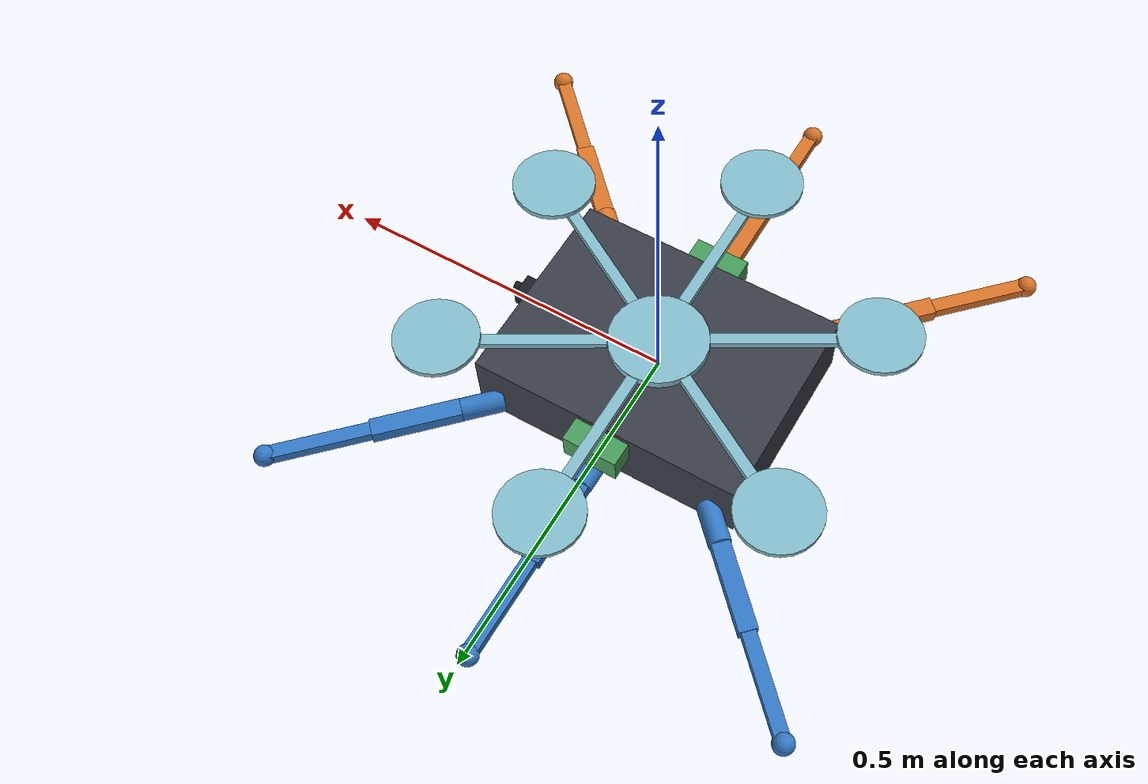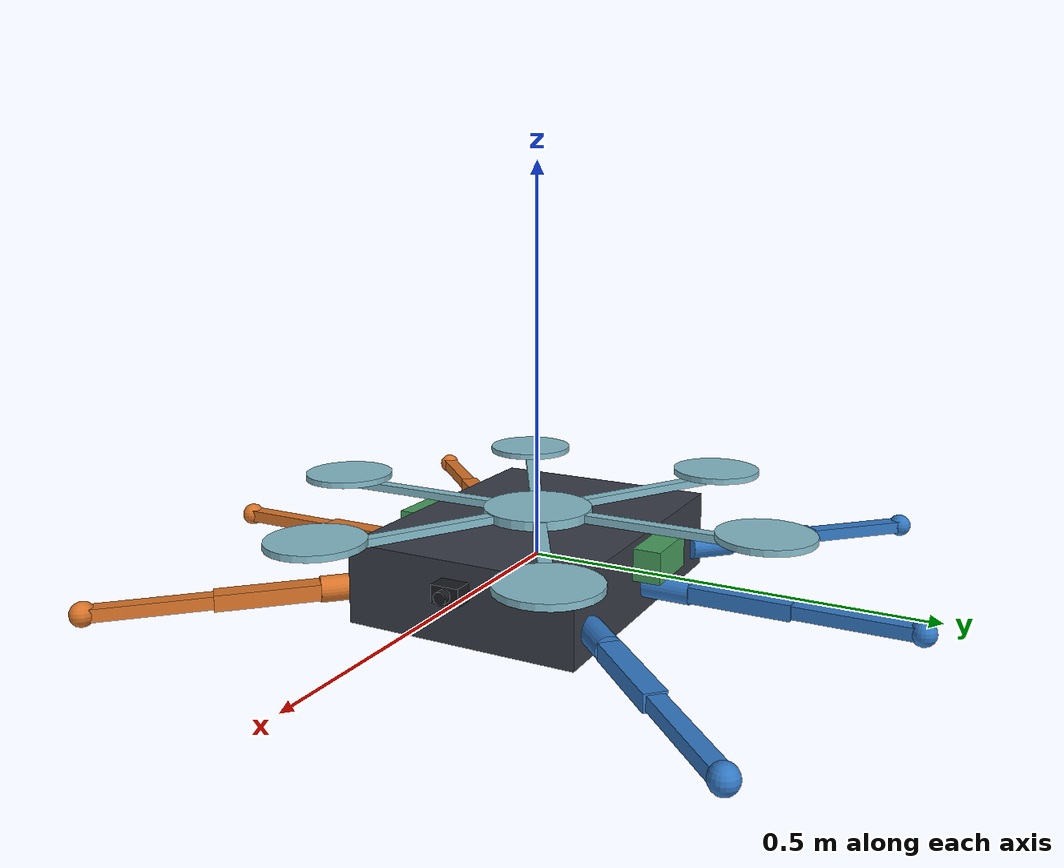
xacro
<?xml version="1.0"?>
<robot xmlns:xacro="http://www.ros.org/wiki/xacro" name="arachne_hx6">
  <!--
    Arachne-HX6 G1 digital skeleton.
    Non-weaponized hexapod + hexarotor visual model for RViz.
    Side bays are non-launching sensor/rescue placeholders only.
  -->

  <!-- Body -->
  <xacro:property name="body_length" value="0.40"/>
  <xacro:property name="body_width" value="0.30"/>
  <xacro:property name="body_height" value="0.10"/>
  <xacro:property name="body_mass" value="4.50"/>

  <!-- Leg segments -->
  <xacro:property name="coxa_length" value="0.060"/>
  <xacro:property name="coxa_radius" value="0.016"/>
  <xacro:property name="coxa_mass" value="0.080"/>
  <xacro:property name="femur_length" value="0.125"/>
  <xacro:property name="femur_width" value="0.026"/>
  <xacro:property name="femur_height" value="0.020"/>
  <xacro:property name="femur_mass" value="0.120"/>
  <xacro:property name="tibia_length" value="0.145"/>
  <xacro:property name="tibia_width" value="0.020"/>
  <xacro:property name="tibia_height" value="0.016"/>
  <xacro:property name="tibia_mass" value="0.100"/>
  <xacro:property name="foot_radius" value="0.015"/>
  <xacro:property name="foot_mass" value="0.025"/>

  <!-- Leg mounts: left +, right -; front / mid / rear along +X. -->
  <xacro:property name="leg_mount_x_front" value="0.16"/>
  <xacro:property name="leg_mount_x_mid" value="0.0"/>
  <xacro:property name="leg_mount_x_rear" value="-0.16"/>
  <xacro:property name="leg_mount_y" value="${body_width / 2.0}"/>
  <xacro:property name="leg_mount_z" value="-0.015"/>
  <xacro:property name="leg_yaw_front" value="${pi / 4.0}"/>
  <xacro:property name="leg_yaw_mid" value="${pi / 2.0}"/>
  <xacro:property name="leg_yaw_rear" value="${3.0 * pi / 4.0}"/>

  <!--
    Joint limits for fold / unfold / lift demos.
    Coxa yaw swings the hip. Femur/tibia pitch: + folds down, - lifts.
  -->
  <xacro:property name="coxa_lower" value="-0.96"/>
  <xacro:property name="coxa_upper" value="0.96"/>
  <xacro:property name="femur_lower" value="-1.48"/>
  <xacro:property name="femur_upper" value="1.22"/>
  <xacro:property name="tibia_lower" value="-0.26"/>
  <xacro:property name="tibia_upper" value="2.18"/>
  <xacro:property name="coxa_effort" value="8.0"/>
  <xacro:property name="femur_effort" value="10.0"/>
  <xacro:property name="tibia_effort" value="8.0"/>
  <xacro:property name="coxa_velocity" value="2.5"/>
  <xacro:property name="femur_velocity" value="2.5"/>
  <xacro:property name="tibia_velocity" value="2.5"/>
  <xacro:property name="joint_damping" value="0.05"/>
  <xacro:property name="joint_friction" value="0.01"/>

  <!-- Planar X-hex visual frame, fixed to the body. -->
  <xacro:property name="hex_hub_radius" value="0.070"/>
  <xacro:property name="hex_hub_height" value="0.012"/>
  <xacro:property name="hex_hub_mass" value="0.080"/>
  <xacro:property name="hex_deck_offset" value="0.008"/>
  <xacro:property name="hex_hub_z" value="${body_height / 2.0 + hex_deck_offset}"/>
  <xacro:property name="hex_arm_span" value="0.30"/>
  <xacro:property name="hex_arm_length" value="${hex_arm_span - hex_hub_radius}"/>
  <xacro:property name="hex_arm_width" value="0.016"/>
  <xacro:property name="hex_arm_height" value="0.010"/>
  <xacro:property name="hex_arm_mass" value="0.040"/>
  <xacro:property name="hex_rotor_radius" value="0.060"/>
  <xacro:property name="hex_rotor_height" value="0.008"/>
  <xacro:property name="hex_rotor_mass" value="0.030"/>
  <xacro:property name="hex_rotor_z_offset" value="0.010"/>
  <xacro:property name="hex_yaw_1" value="${30.0 * pi / 180.0}"/>
  <xacro:property name="hex_yaw_2" value="${90.0 * pi / 180.0}"/>
  <xacro:property name="hex_yaw_3" value="${150.0 * pi / 180.0}"/>
  <xacro:property name="hex_yaw_4" value="${210.0 * pi / 180.0}"/>
  <xacro:property name="hex_yaw_5" value="${270.0 * pi / 180.0}"/>
  <xacro:property name="hex_yaw_6" value="${330.0 * pi / 180.0}"/>

  <!-- Forward-facing camera placeholder -->
  <xacro:property name="camera_size_x" value="0.024"/>
  <xacro:property name="camera_size_y" value="0.036"/>
  <xacro:property name="camera_size_z" value="0.022"/>
  <xacro:property name="camera_mass" value="0.050"/>
  <xacro:property name="camera_lens_radius" value="0.008"/>
  <xacro:property name="camera_lens_length" value="0.010"/>
  <xacro:property name="camera_x" value="${body_length / 2.0 + camera_size_x / 2.0}"/>
  <xacro:property name="camera_z" value="0.018"/>

  <!-- Non-launching left/right sensor_pod bays. No launcher or targeting. -->
  <xacro:property name="sensor_pod_size_x" value="0.080"/>
  <xacro:property name="sensor_pod_size_y" value="0.035"/>
  <xacro:property name="sensor_pod_size_z" value="0.040"/>
  <xacro:property name="sensor_pod_mass" value="0.080"/>
  <xacro:property name="sensor_pod_y" value="${body_width / 2.0 + sensor_pod_size_y / 2.0}"/>
  <xacro:property name="sensor_pod_z" value="0.022"/>

  <xacro:include filename="materials.xacro"/>
  <xacro:include filename="leg.xacro"/>
  <xacro:include filename="hexarotor.xacro"/>

  <link name="base_link">
    <visual>
      <origin xyz="0 0 0" rpy="0 0 0"/>
      <geometry>
        <box size="${body_length} ${body_width} ${body_height}"/>
      </geometry>
      <material name="body_color"/>
    </visual>
    <collision>
      <origin xyz="0 0 0" rpy="0 0 0"/>
      <geometry>
        <box size="${body_length} ${body_width} ${body_height}"/>
      </geometry>
    </collision>
    <xacro:box_inertial mass="${body_mass}" x="${body_length}" y="${body_width}" z="${body_height}"/>
  </link>

  <xacro:hexapod_leg
    prefix="lf"
    x="${leg_mount_x_front}"
    y="${leg_mount_y}"
    z="${leg_mount_z}"
    yaw="${leg_yaw_front}"
    material="left_leg_color"/>
  <xacro:hexapod_leg
    prefix="lm"
    x="${leg_mount_x_mid}"
    y="${leg_mount_y}"
    z="${leg_mount_z}"
    yaw="${leg_yaw_mid}"
    material="left_leg_color"/>
  <xacro:hexapod_leg
    prefix="lr"
    x="${leg_mount_x_rear}"
    y="${leg_mount_y}"
    z="${leg_mount_z}"
    yaw="${leg_yaw_rear}"
    material="left_leg_color"/>
  <xacro:hexapod_leg
    prefix="rf"
    x="${leg_mount_x_front}"
    y="${-leg_mount_y}"
    z="${leg_mount_z}"
    yaw="${-leg_yaw_front}"
    material="right_leg_color"/>
  <xacro:hexapod_leg
    prefix="rm"
    x="${leg_mount_x_mid}"
    y="${-leg_mount_y}"
    z="${leg_mount_z}"
    yaw="${-leg_yaw_mid}"
    material="right_leg_color"/>
  <xacro:hexapod_leg
    prefix="rr"
    x="${leg_mount_x_rear}"
    y="${-leg_mount_y}"
    z="${leg_mount_z}"
    yaw="${-leg_yaw_rear}"
    material="right_leg_color"/>

  <xacro:hexarotor_x_skeleton/>

  <joint name="camera_joint" type="fixed">
    <parent link="base_link"/>
    <child link="camera_link"/>
    <origin xyz="${camera_x} 0 ${camera_z}" rpy="0 0 0"/>
  </joint>
  <link name="camera_link">
    <visual>
      <origin xyz="0 0 0" rpy="0 0 0"/>
      <geometry>
        <box size="${camera_size_x} ${camera_size_y} ${camera_size_z}"/>
      </geometry>
      <material name="camera_color"/>
    </visual>
    <visual>
      <origin xyz="${camera_size_x / 2.0 + camera_lens_length / 2.0} 0 0" rpy="0 ${pi / 2.0} 0"/>
      <geometry>
        <cylinder radius="${camera_lens_radius}" length="${camera_lens_length}"/>
      </geometry>
      <material name="camera_color"/>
    </visual>
    <collision>
      <origin xyz="0 0 0" rpy="0 0 0"/>
      <geometry>
        <box size="${camera_size_x} ${camera_size_y} ${camera_size_z}"/>
      </geometry>
    </collision>
    <xacro:box_inertial
      mass="${camera_mass}"
      x="${camera_size_x}"
      y="${camera_size_y}"
      z="${camera_size_z}"/>
  </link>

  <joint name="left_sensor_pod_joint" type="fixed">
    <parent link="base_link"/>
    <child link="left_sensor_pod"/>
    <origin xyz="0 ${sensor_pod_y} ${sensor_pod_z}" rpy="0 0 0"/>
  </joint>
  <link name="left_sensor_pod">
    <visual>
      <origin xyz="0 0 0" rpy="0 0 0"/>
      <geometry>
        <box size="${sensor_pod_size_x} ${sensor_pod_size_y} ${sensor_pod_size_z}"/>
      </geometry>
      <material name="sensor_pod_color"/>
    </visual>
    <collision>
      <origin xyz="0 0 0" rpy="0 0 0"/>
      <geometry>
        <box size="${sensor_pod_size_x} ${sensor_pod_size_y} ${sensor_pod_size_z}"/>
      </geometry>
    </collision>
    <xacro:box_inertial
      mass="${sensor_pod_mass}"
      x="${sensor_pod_size_x}"
      y="${sensor_pod_size_y}"
      z="${sensor_pod_size_z}"/>
  </link>

  <joint name="right_sensor_pod_joint" type="fixed">
    <parent link="base_link"/>
    <child link="right_sensor_pod"/>
    <origin xyz="0 ${-sensor_pod_y} ${sensor_pod_z}" rpy="0 0 0"/>
  </joint>
  <link name="right_sensor_pod">
    <visual>
      <origin xyz="0 0 0" rpy="0 0 0"/>
      <geometry>
        <box size="${sensor_pod_size_x} ${sensor_pod_size_y} ${sensor_pod_size_z}"/>
      </geometry>
      <material name="sensor_pod_color"/>
    </visual>
    <collision>
      <origin xyz="0 0 0" rpy="0 0 0"/>
      <geometry>
        <box size="${sensor_pod_size_x} ${sensor_pod_size_y} ${sensor_pod_size_z}"/>
      </geometry>
    </collision>
    <xacro:box_inertial
      mass="${sensor_pod_mass}"
      x="${sensor_pod_size_x}"
      y="${sensor_pod_size_y}"
      z="${sensor_pod_size_z}"/>
  </link>
</robot>

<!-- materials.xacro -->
<robot xmlns:xacro="http://www.ros.org/wiki/xacro">
  <!-- Shared materials and inertial helpers for the G1 digital skeleton. -->

  <material name="body_color">
    <color rgba="0.22 0.24 0.28 1.0"/>
  </material>
  <material name="left_leg_color">
    <color rgba="0.20 0.48 0.78 1.0"/>
  </material>
  <material name="right_leg_color">
    <color rgba="0.86 0.46 0.16 1.0"/>
  </material>
  <material name="flight_color">
    <color rgba="0.52 0.74 0.80 1.0"/>
  </material>
  <material name="camera_color">
    <color rgba="0.10 0.11 0.13 1.0"/>
  </material>
  <material name="sensor_pod_color">
    <color rgba="0.28 0.62 0.36 1.0"/>
  </material>

  <xacro:macro name="box_inertial" params="mass x y z xyz:='0 0 0'">
    <inertial>
      <origin xyz="${xyz}" rpy="0 0 0"/>
      <mass value="${mass}"/>
      <inertia
        ixx="${mass / 12.0 * (y * y + z * z)}"
        ixy="0.0"
        ixz="0.0"
        iyy="${mass / 12.0 * (x * x + z * z)}"
        iyz="0.0"
        izz="${mass / 12.0 * (x * x + y * y)}"/>
    </inertial>
  </xacro:macro>

  <xacro:macro name="cylinder_inertial_x" params="mass radius length xyz:='0 0 0'">
    <inertial>
      <origin xyz="${xyz}" rpy="0 0 0"/>
      <mass value="${mass}"/>
      <inertia
        ixx="${0.5 * mass * radius * radius}"
        ixy="0.0"
        ixz="0.0"
        iyy="${mass * (3.0 * radius * radius + length * length) / 12.0}"
        iyz="0.0"
        izz="${mass * (3.0 * radius * radius + length * length) / 12.0}"/>
    </inertial>
  </xacro:macro>

  <xacro:macro name="cylinder_inertial_z" params="mass radius length xyz:='0 0 0'">
    <inertial>
      <origin xyz="${xyz}" rpy="0 0 0"/>
      <mass value="${mass}"/>
      <inertia
        ixx="${mass * (3.0 * radius * radius + length * length) / 12.0}"
        ixy="0.0"
        ixz="0.0"
        iyy="${mass * (3.0 * radius * radius + length * length) / 12.0}"
        iyz="0.0"
        izz="${0.5 * mass * radius * radius}"/>
    </inertial>
  </xacro:macro>

  <xacro:macro name="sphere_inertial" params="mass radius xyz:='0 0 0'">
    <inertial>
      <origin xyz="${xyz}" rpy="0 0 0"/>
      <mass value="${mass}"/>
      <inertia
        ixx="${0.4 * mass * radius * radius}"
        ixy="0.0"
        ixz="0.0"
        iyy="${0.4 * mass * radius * radius}"
        iyz="0.0"
        izz="${0.4 * mass * radius * radius}"/>
    </inertial>
  </xacro:macro>
</robot>

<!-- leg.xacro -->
<robot xmlns:xacro="http://www.ros.org/wiki/xacro">
  <!-- One hexapod leg: coxa (yaw), femur (pitch), tibia (pitch), plus a foot. -->

  <xacro:macro name="hexapod_leg" params="prefix x y z yaw material">
    <joint name="${prefix}_coxa_joint" type="revolute">
      <parent link="base_link"/>
      <child link="${prefix}_coxa"/>
      <origin xyz="${x} ${y} ${z}" rpy="0 0 ${yaw}"/>
      <axis xyz="0 0 1"/>
      <limit
        lower="${coxa_lower}"
        upper="${coxa_upper}"
        effort="${coxa_effort}"
        velocity="${coxa_velocity}"/>
      <dynamics damping="${joint_damping}" friction="${joint_friction}"/>
    </joint>
    <link name="${prefix}_coxa">
      <visual>
        <origin xyz="${coxa_length / 2.0} 0 0" rpy="0 ${pi / 2.0} 0"/>
        <geometry>
          <cylinder radius="${coxa_radius}" length="${coxa_length}"/>
        </geometry>
        <material name="${material}"/>
      </visual>
      <collision>
        <origin xyz="${coxa_length / 2.0} 0 0" rpy="0 ${pi / 2.0} 0"/>
        <geometry>
          <cylinder radius="${coxa_radius}" length="${coxa_length}"/>
        </geometry>
      </collision>
      <xacro:cylinder_inertial_x
        mass="${coxa_mass}"
        radius="${coxa_radius}"
        length="${coxa_length}"
        xyz="${coxa_length / 2.0} 0 0"/>
    </link>

    <joint name="${prefix}_femur_joint" type="revolute">
      <parent link="${prefix}_coxa"/>
      <child link="${prefix}_femur"/>
      <origin xyz="${coxa_length} 0 0" rpy="0 0 0"/>
      <axis xyz="0 1 0"/>
      <limit
        lower="${femur_lower}"
        upper="${femur_upper}"
        effort="${femur_effort}"
        velocity="${femur_velocity}"/>
      <dynamics damping="${joint_damping}" friction="${joint_friction}"/>
    </joint>
    <link name="${prefix}_femur">
      <visual>
        <origin xyz="${femur_length / 2.0} 0 0" rpy="0 0 0"/>
        <geometry>
          <box size="${femur_length} ${femur_width} ${femur_height}"/>
        </geometry>
        <material name="${material}"/>
      </visual>
      <collision>
        <origin xyz="${femur_length / 2.0} 0 0" rpy="0 0 0"/>
        <geometry>
          <box size="${femur_length} ${femur_width} ${femur_height}"/>
        </geometry>
      </collision>
      <xacro:box_inertial
        mass="${femur_mass}"
        x="${femur_length}"
        y="${femur_width}"
        z="${femur_height}"
        xyz="${femur_length / 2.0} 0 0"/>
    </link>

    <joint name="${prefix}_tibia_joint" type="revolute">
      <parent link="${prefix}_femur"/>
      <child link="${prefix}_tibia"/>
      <origin xyz="${femur_length} 0 0" rpy="0 0 0"/>
      <axis xyz="0 1 0"/>
      <limit
        lower="${tibia_lower}"
        upper="${tibia_upper}"
        effort="${tibia_effort}"
        velocity="${tibia_velocity}"/>
      <dynamics damping="${joint_damping}" friction="${joint_friction}"/>
    </joint>
    <link name="${prefix}_tibia">
      <visual>
        <origin xyz="${tibia_length / 2.0} 0 0" rpy="0 0 0"/>
        <geometry>
          <box size="${tibia_length} ${tibia_width} ${tibia_height}"/>
        </geometry>
        <material name="${material}"/>
      </visual>
      <collision>
        <origin xyz="${tibia_length / 2.0} 0 0" rpy="0 0 0"/>
        <geometry>
          <box size="${tibia_length} ${tibia_width} ${tibia_height}"/>
        </geometry>
      </collision>
      <xacro:box_inertial
        mass="${tibia_mass}"
        x="${tibia_length}"
        y="${tibia_width}"
        z="${tibia_height}"
        xyz="${tibia_length / 2.0} 0 0"/>
    </link>

    <joint name="${prefix}_foot_joint" type="fixed">
      <parent link="${prefix}_tibia"/>
      <child link="${prefix}_foot"/>
      <origin xyz="${tibia_length} 0 0" rpy="0 0 0"/>
    </joint>
    <link name="${prefix}_foot">
      <visual>
        <origin xyz="0 0 0" rpy="0 0 0"/>
        <geometry>
          <sphere radius="${foot_radius}"/>
        </geometry>
        <material name="${material}"/>
      </visual>
      <collision>
        <origin xyz="0 0 0" rpy="0 0 0"/>
        <geometry>
          <sphere radius="${foot_radius}"/>
        </geometry>
      </collision>
      <xacro:sphere_inertial mass="${foot_mass}" radius="${foot_radius}"/>
    </link>
  </xacro:macro>
</robot>

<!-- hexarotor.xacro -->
<robot xmlns:xacro="http://www.ros.org/wiki/xacro">
  <!-- Fixed planar X-hex visual skeleton. No lift or rotor dynamics. -->

  <xacro:macro name="hexarotor_arm" params="name yaw">
    <joint name="${name}_arm_joint" type="fixed">
      <parent link="hex_hub"/>
      <child link="${name}_arm"/>
      <origin xyz="0 0 0" rpy="0 0 ${yaw}"/>
    </joint>
    <link name="${name}_arm">
      <visual>
        <origin xyz="${hex_hub_radius + hex_arm_length / 2.0} 0 0" rpy="0 0 0"/>
        <geometry>
          <box size="${hex_arm_length} ${hex_arm_width} ${hex_arm_height}"/>
        </geometry>
        <material name="flight_color"/>
      </visual>
      <collision>
        <origin xyz="${hex_hub_radius + hex_arm_length / 2.0} 0 0" rpy="0 0 0"/>
        <geometry>
          <box size="${hex_arm_length} ${hex_arm_width} ${hex_arm_height}"/>
        </geometry>
      </collision>
      <xacro:box_inertial
        mass="${hex_arm_mass}"
        x="${hex_arm_length}"
        y="${hex_arm_width}"
        z="${hex_arm_height}"
        xyz="${hex_hub_radius + hex_arm_length / 2.0} 0 0"/>
    </link>

    <joint name="${name}_rotor_joint" type="fixed">
      <parent link="${name}_arm"/>
      <child link="${name}_rotor"/>
      <origin xyz="${hex_arm_span} 0 ${hex_rotor_z_offset}" rpy="0 0 0"/>
    </joint>
    <link name="${name}_rotor">
      <visual>
        <origin xyz="0 0 0" rpy="0 0 0"/>
        <geometry>
          <cylinder radius="${hex_rotor_radius}" length="${hex_rotor_height}"/>
        </geometry>
        <material name="flight_color"/>
      </visual>
      <collision>
        <origin xyz="0 0 0" rpy="0 0 0"/>
        <geometry>
          <cylinder radius="${hex_rotor_radius}" length="${hex_rotor_height}"/>
        </geometry>
      </collision>
      <xacro:cylinder_inertial_z
        mass="${hex_rotor_mass}"
        radius="${hex_rotor_radius}"
        length="${hex_rotor_height}"/>
    </link>
  </xacro:macro>

  <xacro:macro name="hexarotor_x_skeleton">
    <joint name="hex_hub_joint" type="fixed">
      <parent link="base_link"/>
      <child link="hex_hub"/>
      <origin xyz="0 0 ${hex_hub_z}" rpy="0 0 0"/>
    </joint>
    <link name="hex_hub">
      <visual>
        <origin xyz="0 0 0" rpy="0 0 0"/>
        <geometry>
          <cylinder radius="${hex_hub_radius}" length="${hex_hub_height}"/>
        </geometry>
        <material name="flight_color"/>
      </visual>
      <collision>
        <origin xyz="0 0 0" rpy="0 0 0"/>
        <geometry>
          <cylinder radius="${hex_hub_radius}" length="${hex_hub_height}"/>
        </geometry>
      </collision>
      <xacro:cylinder_inertial_z
        mass="${hex_hub_mass}"
        radius="${hex_hub_radius}"
        length="${hex_hub_height}"/>
    </link>

    <!-- X-hex: no rotor on the +X axis; arms at ±30°, ±90°, ±150°. -->
    <xacro:hexarotor_arm name="hex_1" yaw="${hex_yaw_1}"/>
    <xacro:hexarotor_arm name="hex_2" yaw="${hex_yaw_2}"/>
    <xacro:hexarotor_arm name="hex_3" yaw="${hex_yaw_3}"/>
    <xacro:hexarotor_arm name="hex_4" yaw="${hex_yaw_4}"/>
    <xacro:hexarotor_arm name="hex_5" yaw="${hex_yaw_5}"/>
    <xacro:hexarotor_arm name="hex_6" yaw="${hex_yaw_6}"/>
  </xacro:macro>
</robot>
